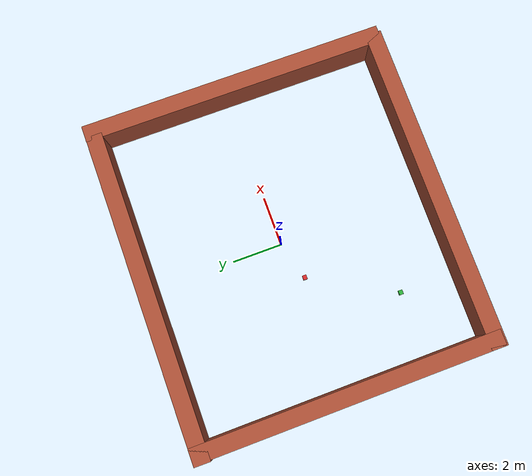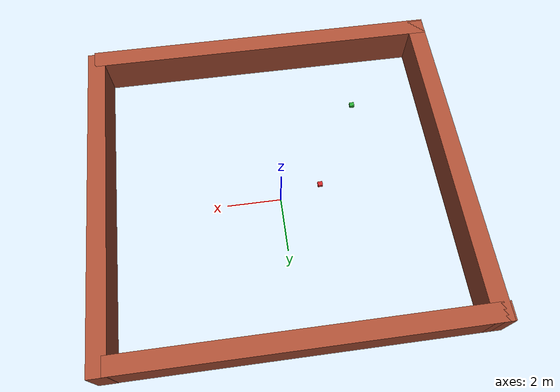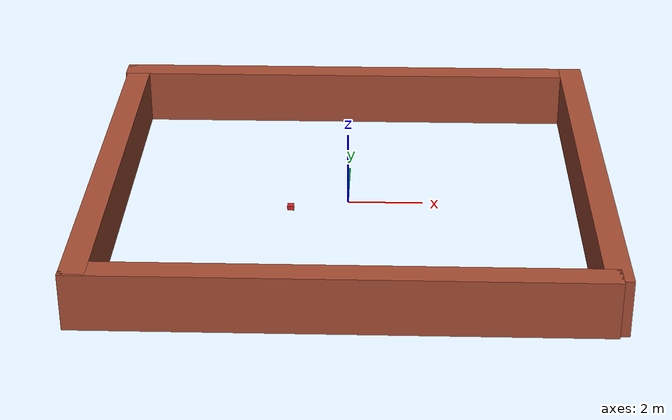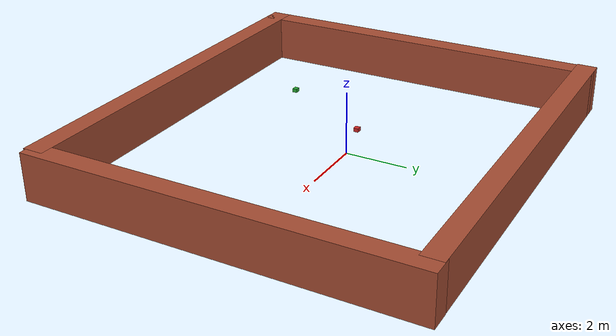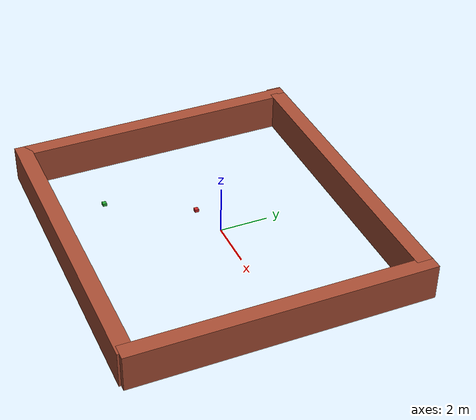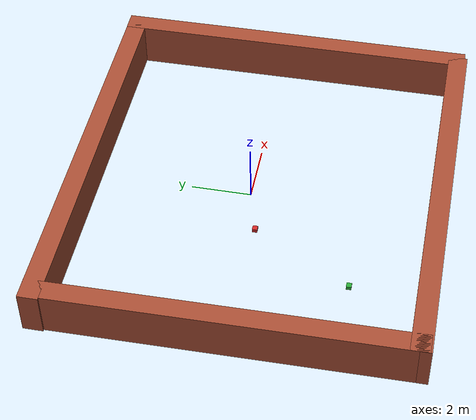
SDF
<sdf version="1.7">
 <world name="default">
  <model name="warehouse_1">
   <pose>0.002496 -0.398913 0 0 -0 0</pose>
   <link name="Wall_10">
    <collision name="Wall_10_Collision">
     <geometry><box><size>12.178 0.65 1.5</size></box></geometry>
     <pose>0 0 0.75 0 -0 0</pose>
    </collision>
    <visual name="Wall_10_Visual">
     <pose>0 0 0.75 0 -0 0</pose>
     <geometry><box><size>12.178 0.65 1.5</size></box></geometry>
     <material>
      <script><uri>file://media/materials/scripts/gazebo.material</uri><name>Gazebo/Bricks</name></script>
      <ambient>1 1 1 1</ambient>
     </material>
     <meta><layer>0</layer></meta>
    </visual>
    <pose>6.414 0.045903 0 0 -0 -1.5708</pose>
   </link>
   <link name="Wall_6">
    <collision name="Wall_6_Collision">
     <geometry><box><size>13.0745 0.65 1.5</size></box></geometry>
     <pose>0 0 0.75 0 -0 0</pose>
    </collision>
    <visual name="Wall_6_Visual">
     <pose>0 0 0.75 0 -0 0</pose>
     <geometry><box><size>13.0745 0.65 1.5</size></box></geometry>
     <material>
      <script><uri>file://media/materials/scripts/gazebo.material</uri><name>Gazebo/Bricks</name></script>
      <ambient>1 1 1 1</ambient>
     </material>
     <meta><layer>0</layer></meta>
    </visual>
    <pose>-0.041762 -5.79386 0 0 -0 3.13914</pose>
   </link>
   <link name="Wall_7">
    <collision name="Wall_7_Collision">
     <geometry><box><size>12.1777 0.65 1.5</size></box></geometry>
     <pose>0 0 0.75 0 -0 0</pose>
    </collision>
    <visual name="Wall_7_Visual">
     <pose>0 0 0.75 0 -0 0</pose>
     <geometry><box><size>12.1777 0.65 1.5</size></box></geometry>
     <material>
      <script><uri>file://media/materials/scripts/gazebo.material</uri><name>Gazebo/Bricks</name></script>
      <ambient>1 1 1 1</ambient>
     </material>
     <meta><layer>0</layer></meta>
    </visual>
    <pose>-6.30726 0.038657 0 0 -0 1.58003</pose>
   </link>
   <link name="Wall_8">
    <collision name="Wall_8_Collision">
     <geometry><box><size>13 0.65 1.5</size></box></geometry>
     <pose>0 0 0.75 0 -0 0</pose>
    </collision>
    <visual name="Wall_8_Visual">
     <pose>0 0 0.75 0 -0 0</pose>
     <geometry><box><size>13 0.65 1.5</size></box></geometry>
     <material>
      <script><uri>file://media/materials/scripts/gazebo.material</uri><name>Gazebo/Bricks</name></script>
      <ambient>1 1 1 1</ambient>
     </material>
     <meta><layer>0</layer></meta>
    </visual>
    <pose>-0.239003 5.80243 0 0 -0 0</pose>
   </link>
   <static>1</static>
  </model>
  <model name="unit_box_1_clone_0_clone_clone_0">
   <link name="link">
    <inertial>
     <mass>1</mass>
     <inertia>
      <ixx>0.166667</ixx>
      <ixy>0</ixy>
      <ixz>0</ixz>
      <iyy>0.166667</iyy>
      <iyz>0</iyz>
      <izz>0.166667</izz>
     </inertia>
    </inertial>
    <visual name="visual">
     <geometry><box><size>0.177426 0.164052 0.124949</size></box></geometry>
     <material>
      <script><name>Gazebo/Red</name><uri>file://media/materials/scripts/gazebo.material</uri></script>
      <shader type="pixel"><normal_map>__default__</normal_map></shader>
      <ambient>1 0 0 1</ambient>
      <diffuse>1 0 0 1</diffuse>
      <specular>0.1 0.1 0.1 1</specular>
      <emissive>0 0 0 1</emissive>
     </material>
    </visual>
    <collision name="collision">
     <geometry><box><size>0.177426 0.164052 0.124949</size></box></geometry>
     <surface>
      <friction>
       <ode><mu>1</mu><mu2>1</mu2><fdir1>0 0 0</fdir1><slip1>0</slip1><slip2>0</slip2></ode>
       <torsional>
        <coefficient>1</coefficient>
        <patch_radius>0</patch_radius>
        <surface_radius>0</surface_radius>
        <use_patch_radius>1</use_patch_radius>
        <ode><slip>0</slip></ode>
       </torsional>
      </friction>
      <bounce><restitution_coefficient>0</restitution_coefficient><threshold>1e+06</threshold></bounce>
      <contact>
       <collide_without_contact>0</collide_without_contact>
       <collide_without_contact_bitmask>1</collide_without_contact_bitmask>
       <collide_bitmask>1</collide_bitmask>
       <ode>
        <soft_cfm>0</soft_cfm>
        <soft_erp>0.2</soft_erp>
        <kp>1e+13</kp>
        <kd>1</kd>
        <max_vel>0.01</max_vel>
        <min_depth>0</min_depth>
       </ode>
       <bullet>
        <split_impulse>1</split_impulse>
        <split_impulse_penetration_threshold>-0.01</split_impulse_penetration_threshold>
        <soft_cfm>0</soft_cfm>
        <soft_erp>0.2</soft_erp>
        <kp>1e+13</kp>
        <kd>1</kd>
       </bullet>
      </contact>
     </surface>
    </collision>
   </link>
   <static>0</static>
   <pose>-1.53875 -0.428371 0.062475 0 4e-06 -2e-06</pose>
  </model>
  <model name="green_box_clone_clone">
   <link name="link">
    <inertial>
     <mass>1</mass>
     <inertia>
      <ixx>0.166667</ixx>
      <ixy>0</ixy>
      <ixz>0</ixz>
      <iyy>0.166667</iyy>
      <iyz>0</iyz>
      <izz>0.166667</izz>
     </inertia>
    </inertial>
    <visual name="visual">
     <geometry><box><size>0.177426 0.164052 0.124949</size></box></geometry>
     <material>
      <script><name>Gazebo/Green</name><uri>file://media/materials/scripts/gazebo.material</uri></script>
      <shader type="pixel"><normal_map>__default__</normal_map></shader>
      <ambient>0 1 0 1</ambient>
      <diffuse>0 1 0 1</diffuse>
      <specular>0 0.1 0 1</specular>
      <emissive>0 0 0 1</emissive>
     </material>
    </visual>
    <collision name="collision">
     <geometry><box><size>0.177426 0.164052 0.124949</size></box></geometry>
     <surface>
      <friction>
       <ode><mu>1</mu><mu2>1</mu2><fdir1>0 0 0</fdir1><slip1>0</slip1><slip2>0</slip2></ode>
       <torsional>
        <coefficient>1</coefficient>
        <patch_radius>0</patch_radius>
        <surface_radius>0</surface_radius>
        <use_patch_radius>1</use_patch_radius>
        <ode><slip>0</slip></ode>
       </torsional>
      </friction>
      <bounce><restitution_coefficient>0</restitution_coefficient><threshold>1e+06</threshold></bounce>
      <contact>
       <collide_without_contact>0</collide_without_contact>
       <collide_without_contact_bitmask>1</collide_without_contact_bitmask>
       <collide_bitmask>1</collide_bitmask>
       <ode>
        <soft_cfm>0</soft_cfm>
        <soft_erp>0.2</soft_erp>
        <kp>1e+13</kp>
        <kd>1</kd>
        <max_vel>0.01</max_vel>
        <min_depth>0</min_depth>
       </ode>
       <bullet>
        <split_impulse>1</split_impulse>
        <split_impulse_penetration_threshold>-0.01</split_impulse_penetration_threshold>
        <soft_cfm>0</soft_cfm>
        <soft_erp>0.2</soft_erp>
        <kp>1e+13</kp>
        <kd>1</kd>
       </bullet>
      </contact>
     </surface>
    </collision>
   </link>
   <static>0</static>
   <pose>-3.36786 -3.74208 0.062475 4e-06 -1e-06 -8e-06</pose>
  </model>
 </world>
</sdf>
